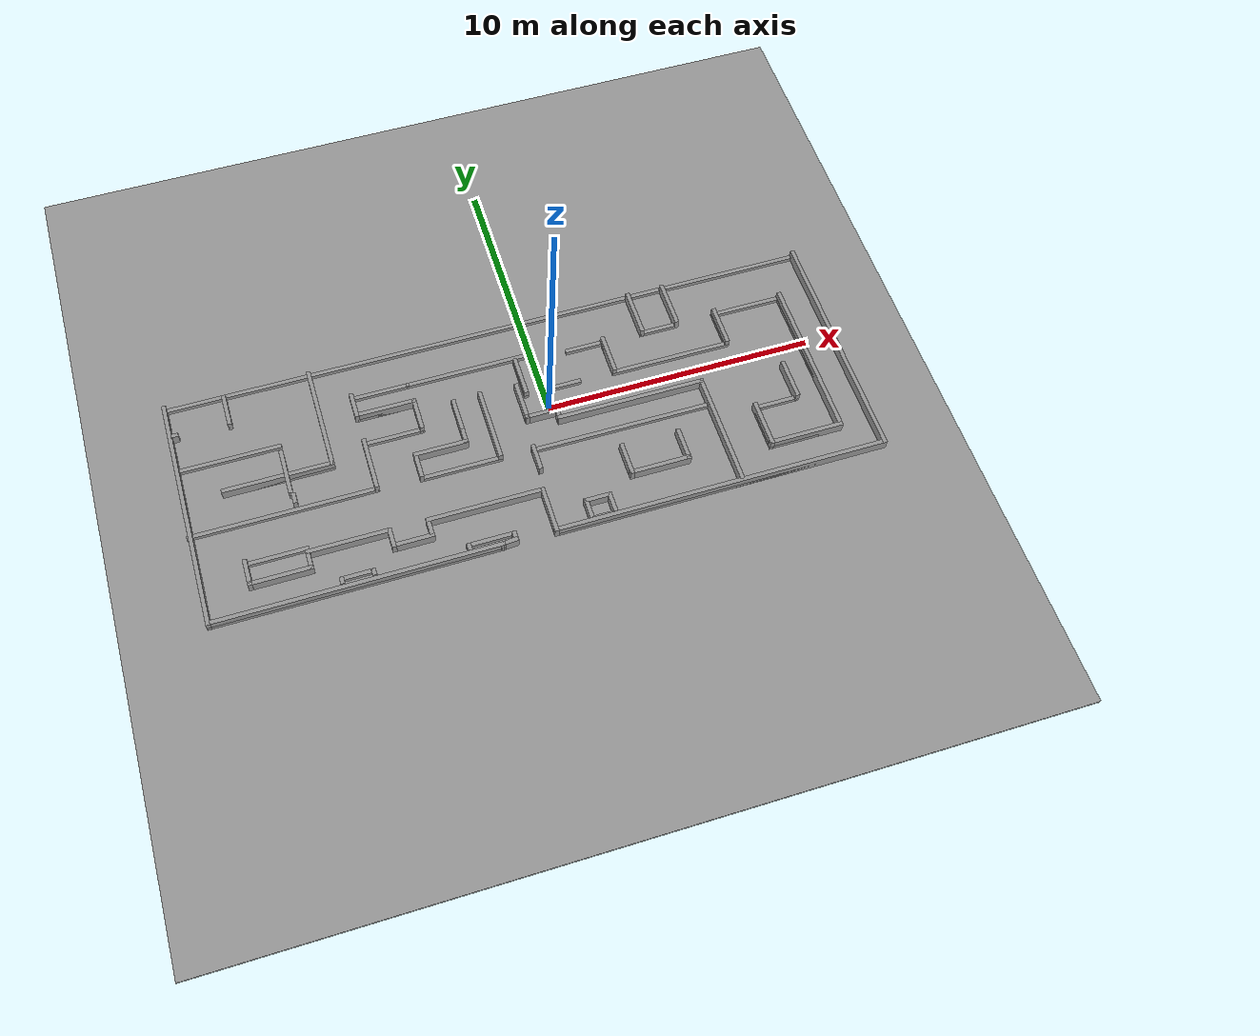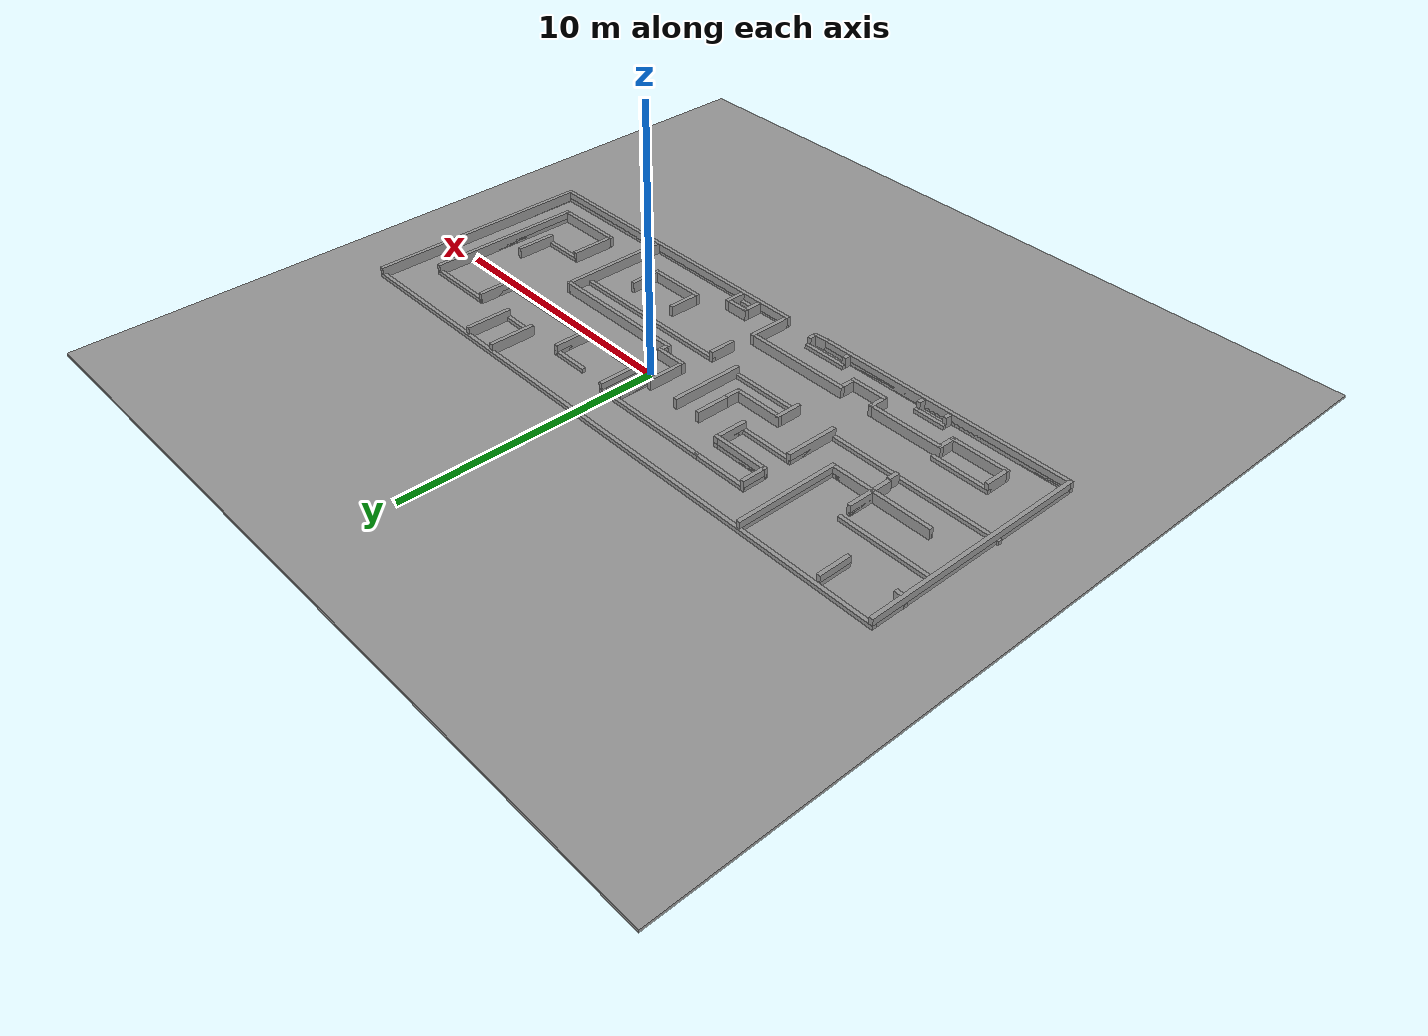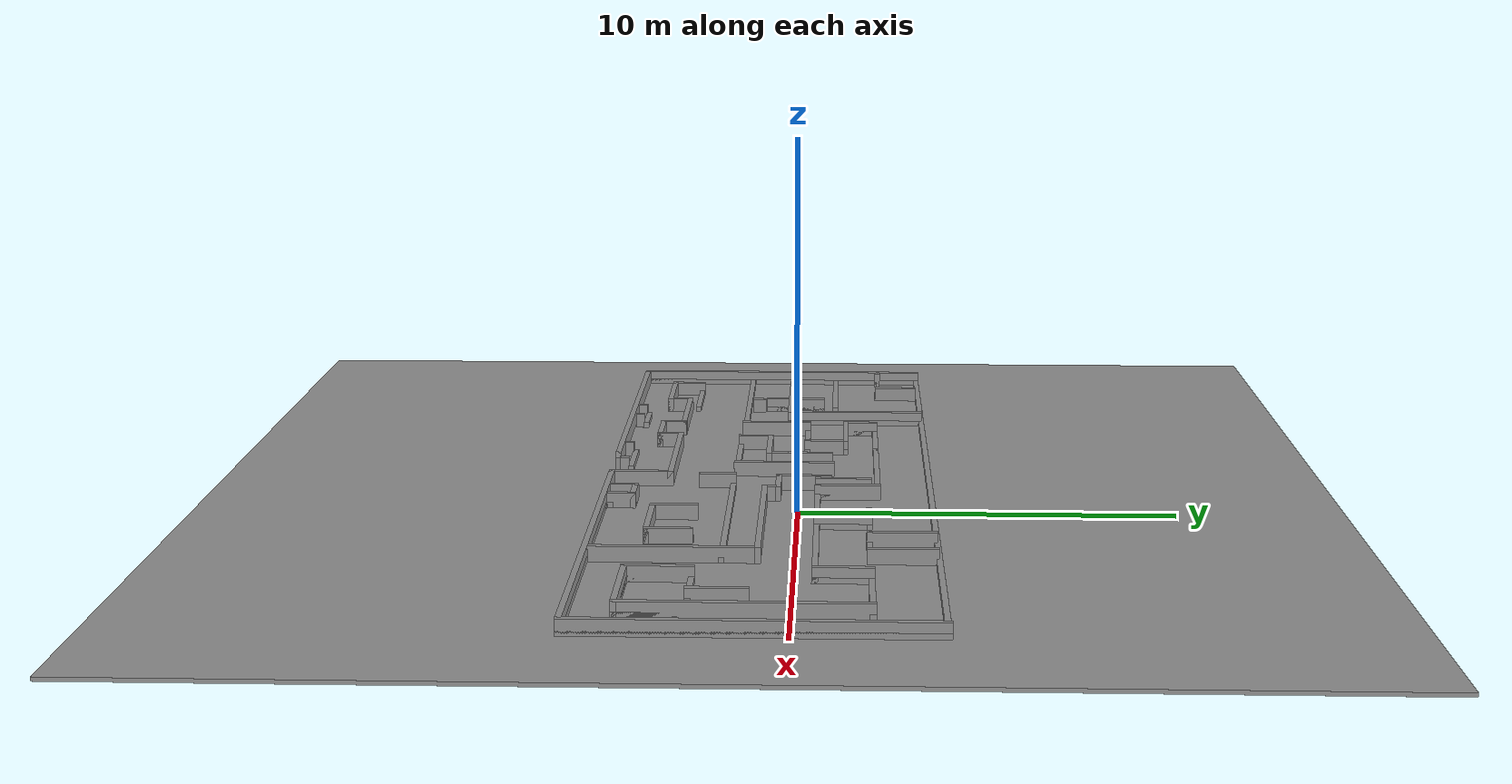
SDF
<sdf version="1.6">
 <world name="default">
  <light name="sun" type="directional">
   <pose>0 0 10 0 -0 0</pose>
   <diffuse>0.8 0.8 0.8 1</diffuse>
   <specular>0.1 0.1 0.1 1</specular>
   <attenuation>
    <range>1000</range>
    <constant>0.9</constant>
    <linear>0.01</linear>
    <quadratic>0.001</quadratic>
   </attenuation>
   <direction>-0.25 0.5 -1</direction>
  </light>
  <gravity>0 0 -9.8</gravity>
  <magnetic_field>6e-06 2.3e-05 -4.2e-05</magnetic_field>
  <atmosphere type="adiabatic"/>
  <physics name="default_physics" default="0" type="ode">
   <max_step_size>0.01</max_step_size>
   <real_time_factor>1</real_time_factor>
   <real_time_update_rate>1000</real_time_update_rate>
  </physics>
  <scene><ambient>0.4 0.4 0.4 1</ambient><background>0.7 0.7 0.7 1</background><shadows>1</shadows></scene>
  <spherical_coordinates>
   <surface_model>EARTH_WGS84</surface_model>
   <latitude_deg>0</latitude_deg>
   <longitude_deg>0</longitude_deg>
   <elevation>0</elevation>
   <heading_deg>0</heading_deg>
  </spherical_coordinates>
  <model name="labrytinthe4">
   <pose>-1.30922 -0.769444 0.25 0 -0 0</pose>
   <link name="Floor_0">
    <collision name="Floor_0_Collision">
     <geometry><box><size>30 30 0.1</size></box></geometry>
     <pose>0 0 0.05 0 -0 0</pose>
    </collision>
    <visual name="Floor_0_Visual">
     <pose>0 0 0.05 0 -0 0</pose>
     <geometry><box><size>30 30 0.1</size></box></geometry>
     <material>
      <script><uri>file://media/materials/scripts/gazebo.material</uri><name>Gazebo/Grey</name></script>
      <ambient>1 1 1 1</ambient>
     </material>
    </visual>
   </link>
   <link name="Wall_0">
    <collision name="Wall_0_Collision"><geometry><box><size>10.25 0.15 0.5</size></box></geometry></collision>
    <visual name="Wall_0_Visual">
     <geometry><box><size>10.25 0.15 0.5</size></box></geometry>
     <material>
      <script><uri>file://media/materials/scripts/gazebo.material</uri><name>Gazebo/Grey</name></script>
      <ambient>1 1 1 1</ambient>
     </material>
    </visual>
    <pose>-6.96553 -4.29701 0 0 -0 3.14159</pose>
   </link>
   <link name="Wall_1">
    <collision name="Wall_1_Collision"><geometry><box><size>8.75 0.15 0.5</size></box></geometry></collision>
    <visual name="Wall_1_Visual">
     <geometry><box><size>8.75 0.15 0.5</size></box></geometry>
     <material>
      <script><uri>file://media/materials/scripts/gazebo.material</uri><name>Gazebo/Grey</name></script>
      <ambient>1 1 1 1</ambient>
     </material>
    </visual>
    <pose>-12.0155 0.002988 0 0 -0 1.5708</pose>
   </link>
   <link name="Wall_100">
    <collision name="Wall_100_Collision"><geometry><box><size>0.25 0.15 0.5</size></box></geometry></collision>
    <visual name="Wall_100_Visual">
     <geometry><box><size>0.25 0.15 0.5</size></box></geometry>
     <material>
      <script><uri>file://media/materials/scripts/gazebo.material</uri><name>Gazebo/Grey</name></script>
      <ambient>1 1 1 1</ambient>
     </material>
    </visual>
    <pose>-1.43337 -4.08178 0.25 0 0 -1.5708</pose>
   </link>
   <link name="Wall_101">
    <collision name="Wall_101_Collision">
     <geometry><box><size>0.633833 0.15 0.5</size></box></geometry>
    </collision>
    <visual name="Wall_101_Visual">
     <geometry><box><size>0.633833 0.15 0.5</size></box></geometry>
     <material>
      <script><uri>file://media/materials/scripts/gazebo.material</uri><name>Gazebo/Grey</name></script>
      <ambient>1 1 1 1</ambient>
     </material>
    </visual>
    <pose>-1.67445 -4.2769 0.25 0 0 -3.05835</pose>
   </link>
   <link name="Wall_103">
    <collision name="Wall_103_Collision"><geometry><box><size>1.5 0.15 0.5</size></box></geometry></collision>
    <visual name="Wall_103_Visual">
     <geometry><box><size>1.5 0.15 0.5</size></box></geometry>
     <material>
      <script><uri>file://media/materials/scripts/gazebo.material</uri><name>Gazebo/Grey</name></script>
      <ambient>1 1 1 1</ambient>
     </material>
    </visual>
    <pose>9.87552 -0.922819 0.25 0 -0 1.5708</pose>
   </link>
   <link name="Wall_105">
    <collision name="Wall_105_Collision"><geometry><box><size>4.25 0.15 0.5</size></box></geometry></collision>
    <visual name="Wall_105_Visual">
     <geometry><box><size>4.25 0.15 0.5</size></box></geometry>
     <material>
      <script><uri>file://media/materials/scripts/gazebo.material</uri><name>Gazebo/Grey</name></script>
      <ambient>1 1 1 1</ambient>
     </material>
    </visual>
    <pose>6.76194 -2.14644 0.25 0 -0 1.5708</pose>
   </link>
   <link name="Wall_106">
    <collision name="Wall_106_Collision"><geometry><box><size>5.5 0.15 0.5</size></box></geometry></collision>
    <visual name="Wall_106_Visual">
     <geometry><box><size>5.5 0.15 0.5</size></box></geometry>
     <material>
      <script><uri>file://media/materials/scripts/gazebo.material</uri><name>Gazebo/Grey</name></script>
      <ambient>1 1 1 1</ambient>
     </material>
    </visual>
    <pose>4.08694 -0.096444 0.25 0 -0 3.14159</pose>
   </link>
   <link name="Wall_107">
    <collision name="Wall_107_Collision"><geometry><box><size>0.25 0.15 0.5</size></box></geometry></collision>
    <visual name="Wall_107_Visual">
     <geometry><box><size>0.25 0.15 0.5</size></box></geometry>
     <material>
      <script><uri>file://media/materials/scripts/gazebo.material</uri><name>Gazebo/Grey</name></script>
      <ambient>1 1 1 1</ambient>
     </material>
    </visual>
    <pose>1.41194 0.078556 0.25 0 -0 1.5708</pose>
   </link>
   <link name="Wall_108">
    <collision name="Wall_108_Collision"><geometry><box><size>1.25 0.15 0.5</size></box></geometry></collision>
    <visual name="Wall_108_Visual">
     <geometry><box><size>1.25 0.15 0.5</size></box></geometry>
     <material>
      <script><uri>file://media/materials/scripts/gazebo.material</uri><name>Gazebo/Grey</name></script>
      <ambient>1 1 1 1</ambient>
     </material>
    </visual>
    <pose>0.861942 0.253556 0.25 0 -0 3.14159</pose>
   </link>
   <link name="Wall_109">
    <collision name="Wall_109_Collision"><geometry><box><size>1.5 0.15 0.5</size></box></geometry></collision>
    <visual name="Wall_109_Visual">
     <geometry><box><size>1.5 0.15 0.5</size></box></geometry>
     <material>
      <script><uri>file://media/materials/scripts/gazebo.material</uri><name>Gazebo/Grey</name></script>
      <ambient>1 1 1 1</ambient>
     </material>
    </visual>
    <pose>0.311942 0.928556 0.25 0 -0 1.5708</pose>
   </link>
   <link name="Wall_111">
    <collision name="Wall_111_Collision"><geometry><box><size>1.25 0.15 0.5</size></box></geometry></collision>
    <visual name="Wall_111_Visual">
     <geometry><box><size>1.25 0.15 0.5</size></box></geometry>
     <material>
      <script><uri>file://media/materials/scripts/gazebo.material</uri><name>Gazebo/Grey</name></script>
      <ambient>1 1 1 1</ambient>
     </material>
    </visual>
    <pose>-2.03806 1.05356 0.25 0 0 -1.5708</pose>
   </link>
   <link name="Wall_112">
    <collision name="Wall_112_Collision"><geometry><box><size>0.75 0.15 0.5</size></box></geometry></collision>
    <visual name="Wall_112_Visual">
     <geometry><box><size>0.75 0.15 0.5</size></box></geometry>
     <material>
      <script><uri>file://media/materials/scripts/gazebo.material</uri><name>Gazebo/Grey</name></script>
      <ambient>1 1 1 1</ambient>
     </material>
    </visual>
    <pose>-2.03806 0.203556 0.25 0 0 -1.5708</pose>
   </link>
   <link name="Wall_113">
    <collision name="Wall_113_Collision"><geometry><box><size>2 0.15 0.5</size></box></geometry></collision>
    <visual name="Wall_113_Visual">
     <geometry><box><size>2 0.15 0.5</size></box></geometry>
     <material>
      <script><uri>file://media/materials/scripts/gazebo.material</uri><name>Gazebo/Grey</name></script>
      <ambient>1 1 1 1</ambient>
     </material>
    </visual>
    <pose>-2.96306 -0.096444 0.25 0 -0 3.14159</pose>
   </link>
   <link name="Wall_114">
    <collision name="Wall_114_Collision"><geometry><box><size>1 0.15 0.5</size></box></geometry></collision>
    <visual name="Wall_114_Visual">
     <geometry><box><size>1 0.15 0.5</size></box></geometry>
     <material>
      <script><uri>file://media/materials/scripts/gazebo.material</uri><name>Gazebo/Grey</name></script>
      <ambient>1 1 1 1</ambient>
     </material>
    </visual>
    <pose>-3.88806 -0.521444 0.25 0 0 -1.5708</pose>
   </link>
   <link name="Wall_115">
    <collision name="Wall_115_Collision"><geometry><box><size>3 0.15 0.5</size></box></geometry></collision>
    <visual name="Wall_115_Visual">
     <geometry><box><size>3 0.15 0.5</size></box></geometry>
     <material>
      <script><uri>file://media/materials/scripts/gazebo.material</uri><name>Gazebo/Grey</name></script>
      <ambient>1 1 1 1</ambient>
     </material>
    </visual>
    <pose>-2.46306 -0.946445 0 0 -0 0</pose>
   </link>
   <link name="Wall_116">
    <collision name="Wall_116_Collision"><geometry><box><size>2.75 0.15 0.5</size></box></geometry></collision>
    <visual name="Wall_116_Visual">
     <geometry><box><size>2.75 0.15 0.5</size></box></geometry>
     <material>
      <script><uri>file://media/materials/scripts/gazebo.material</uri><name>Gazebo/Grey</name></script>
      <ambient>1 1 1 1</ambient>
     </material>
    </visual>
    <pose>-1.03806 0.353556 0.25 0 -0 1.5708</pose>
   </link>
   <link name="Wall_118">
    <collision name="Wall_118_Collision"><geometry><box><size>1 0.15 0.5</size></box></geometry></collision>
    <visual name="Wall_118_Visual">
     <geometry><box><size>1 0.15 0.5</size></box></geometry>
     <material>
      <script><uri>file://media/materials/scripts/gazebo.material</uri><name>Gazebo/Grey</name></script>
      <ambient>1 1 1 1</ambient>
     </material>
    </visual>
    <pose>0.164691 -1.40327 0.25 0 0 -1.5708</pose>
   </link>
   <link name="Wall_12">
    <collision name="Wall_12_Collision"><geometry><box><size>1.25 0.15 0.5</size></box></geometry></collision>
    <visual name="Wall_12_Visual">
     <geometry><box><size>1.25 0.15 0.5</size></box></geometry>
     <material>
      <script><uri>file://media/materials/scripts/gazebo.material</uri><name>Gazebo/Grey</name></script>
      <ambient>1 1 1 1</ambient>
     </material>
    </visual>
    <pose>-9.88687 3.59444 0 0 -0 1.5708</pose>
   </link>
   <link name="Wall_120">
    <collision name="Wall_120_Collision"><geometry><box><size>1.25 0.15 0.5</size></box></geometry></collision>
    <visual name="Wall_120_Visual">
     <geometry><box><size>1.25 0.15 0.5</size></box></geometry>
     <material>
      <script><uri>file://media/materials/scripts/gazebo.material</uri><name>Gazebo/Grey</name></script>
      <ambient>1 1 1 1</ambient>
     </material>
    </visual>
    <pose>5.26469 -2.37827 0.25 0 0 -1.5708</pose>
   </link>
   <link name="Wall_121">
    <collision name="Wall_121_Collision"><geometry><box><size>2.25 0.15 0.5</size></box></geometry></collision>
    <visual name="Wall_121_Visual">
     <geometry><box><size>2.25 0.15 0.5</size></box></geometry>
     <material>
      <script><uri>file://media/materials/scripts/gazebo.material</uri><name>Gazebo/Grey</name></script>
      <ambient>1 1 1 1</ambient>
     </material>
    </visual>
    <pose>4.21469 -2.92827 0.25 0 -0 3.14159</pose>
   </link>
   <link name="Wall_122">
    <collision name="Wall_122_Collision"><geometry><box><size>1.25 0.15 0.5</size></box></geometry></collision>
    <visual name="Wall_122_Visual">
     <geometry><box><size>1.25 0.15 0.5</size></box></geometry>
     <material>
      <script><uri>file://media/materials/scripts/gazebo.material</uri><name>Gazebo/Grey</name></script>
      <ambient>1 1 1 1</ambient>
     </material>
    </visual>
    <pose>3.16469 -2.37827 0.25 0 -0 1.5708</pose>
   </link>
   <link name="Wall_124">
    <collision name="Wall_124_Collision"><geometry><box><size>6.75 0.15 0.5</size></box></geometry></collision>
    <visual name="Wall_124_Visual">
     <geometry><box><size>6.75 0.15 0.5</size></box></geometry>
     <material>
      <script><uri>file://media/materials/scripts/gazebo.material</uri><name>Gazebo/Grey</name></script>
      <ambient>1 1 1 1</ambient>
     </material>
    </visual>
    <pose>3.46469 -0.978273 0 0 -0 0</pose>
   </link>
   <link name="Wall_126">
    <collision name="Wall_126_Collision"><geometry><box><size>0.75 0.15 0.5</size></box></geometry></collision>
    <visual name="Wall_126_Visual">
     <geometry><box><size>0.75 0.15 0.5</size></box></geometry>
     <material>
      <script><uri>file://media/materials/scripts/gazebo.material</uri><name>Gazebo/Grey</name></script>
      <ambient>1 1 1 1</ambient>
     </material>
    </visual>
    <pose>1.29105 -3.8327 0.25 0 0 -1.5708</pose>
   </link>
   <link name="Wall_127">
    <collision name="Wall_127_Collision"><geometry><box><size>1 0.15 0.5</size></box></geometry></collision>
    <visual name="Wall_127_Visual">
     <geometry><box><size>1 0.15 0.5</size></box></geometry>
     <material>
      <script><uri>file://media/materials/scripts/gazebo.material</uri><name>Gazebo/Grey</name></script>
      <ambient>1 1 1 1</ambient>
     </material>
    </visual>
    <pose>1.71605 -4.1327 0 0 -0 0</pose>
   </link>
   <link name="Wall_128">
    <collision name="Wall_128_Collision"><geometry><box><size>0.75 0.15 0.5</size></box></geometry></collision>
    <visual name="Wall_128_Visual">
     <geometry><box><size>0.75 0.15 0.5</size></box></geometry>
     <material>
      <script><uri>file://media/materials/scripts/gazebo.material</uri><name>Gazebo/Grey</name></script>
      <ambient>1 1 1 1</ambient>
     </material>
    </visual>
    <pose>2.14105 -3.8327 0.25 0 -0 1.5708</pose>
   </link>
   <link name="Wall_129">
    <collision name="Wall_129_Collision"><geometry><box><size>1 0.15 0.5</size></box></geometry></collision>
    <visual name="Wall_129_Visual">
     <geometry><box><size>1 0.15 0.5</size></box></geometry>
     <material>
      <script><uri>file://media/materials/scripts/gazebo.material</uri><name>Gazebo/Grey</name></script>
      <ambient>1 1 1 1</ambient>
     </material>
    </visual>
    <pose>1.71605 -3.5327 0.25 0 -0 3.14159</pose>
   </link>
   <link name="Wall_14">
    <collision name="Wall_14_Collision"><geometry><box><size>3.75 0.15 0.5</size></box></geometry></collision>
    <visual name="Wall_14_Visual">
     <geometry><box><size>3.75 0.15 0.5</size></box></geometry>
     <material>
      <script><uri>file://media/materials/scripts/gazebo.material</uri><name>Gazebo/Grey</name></script>
      <ambient>1 1 1 1</ambient>
     </material>
    </visual>
    <pose>-10.1839 1.73706 0 0 -0 0</pose>
   </link>
   <link name="Wall_15">
    <collision name="Wall_15_Collision"><geometry><box><size>1.75 0.15 0.5</size></box></geometry></collision>
    <visual name="Wall_15_Visual">
     <geometry><box><size>1.75 0.15 0.5</size></box></geometry>
     <material>
      <script><uri>file://media/materials/scripts/gazebo.material</uri><name>Gazebo/Grey</name></script>
      <ambient>1 1 1 1</ambient>
     </material>
    </visual>
    <pose>-8.38391 0.53706 0 0 -0 1.5708</pose>
   </link>
   <link name="Wall_17">
    <collision name="Wall_17_Collision"><geometry><box><size>4 0.15 0.5</size></box></geometry></collision>
    <visual name="Wall_17_Visual">
     <geometry><box><size>4 0.15 0.5</size></box></geometry>
     <material>
      <script><uri>file://media/materials/scripts/gazebo.material</uri><name>Gazebo/Grey</name></script>
      <ambient>1 1 1 1</ambient>
     </material>
    </visual>
    <pose>-6.75438 2.32626 0 0 0 -1.5708</pose>
   </link>
   <link name="Wall_18">
    <collision name="Wall_18_Collision"><geometry><box><size>4 0.15 0.5</size></box></geometry></collision>
    <visual name="Wall_18_Visual">
     <geometry><box><size>4 0.15 0.5</size></box></geometry>
     <material>
      <script><uri>file://media/materials/scripts/gazebo.material</uri><name>Gazebo/Grey</name></script>
      <ambient>1 1 1 1</ambient>
     </material>
    </visual>
    <pose>-8.67938 0.401256 0 0 -0 3.14159</pose>
   </link>
   <link name="Wall_2">
    <collision name="Wall_2_Collision"><geometry><box><size>24.25 0.15 0.5</size></box></geometry></collision>
    <visual name="Wall_2_Visual">
     <geometry><box><size>24.25 0.15 0.5</size></box></geometry>
     <material>
      <script><uri>file://media/materials/scripts/gazebo.material</uri><name>Gazebo/Grey</name></script>
      <ambient>1 1 1 1</ambient>
     </material>
    </visual>
    <pose>0.034475 4.30299 0 0 -0 0</pose>
   </link>
   <link name="Wall_20">
    <collision name="Wall_20_Collision"><geometry><box><size>6.75 0.15 0.5</size></box></geometry></collision>
    <visual name="Wall_20_Visual">
     <geometry><box><size>6.75 0.15 0.5</size></box></geometry>
     <material>
      <script><uri>file://media/materials/scripts/gazebo.material</uri><name>Gazebo/Grey</name></script>
      <ambient>1 1 1 1</ambient>
     </material>
    </visual>
    <pose>-8.78447 -0.897819 0 0 -0 0</pose>
   </link>
   <link name="Wall_21">
    <collision name="Wall_21_Collision"><geometry><box><size>2 0.15 0.5</size></box></geometry></collision>
    <visual name="Wall_21_Visual">
     <geometry><box><size>2 0.15 0.5</size></box></geometry>
     <material>
      <script><uri>file://media/materials/scripts/gazebo.material</uri><name>Gazebo/Grey</name></script>
      <ambient>1 1 1 1</ambient>
     </material>
    </visual>
    <pose>-5.48447 0.027181 0 0 -0 1.5708</pose>
   </link>
   <link name="Wall_22">
    <collision name="Wall_22_Collision"><geometry><box><size>2.25 0.15 0.5</size></box></geometry></collision>
    <visual name="Wall_22_Visual">
     <geometry><box><size>2.25 0.15 0.5</size></box></geometry>
     <material>
      <script><uri>file://media/materials/scripts/gazebo.material</uri><name>Gazebo/Grey</name></script>
      <ambient>1 1 1 1</ambient>
     </material>
    </visual>
    <pose>-4.43447 0.952181 0 0 -0 0</pose>
   </link>
   <link name="Wall_23">
    <collision name="Wall_23_Collision"><geometry><box><size>1.25 0.15 0.5</size></box></geometry></collision>
    <visual name="Wall_23_Visual">
     <geometry><box><size>1.25 0.15 0.5</size></box></geometry>
     <material>
      <script><uri>file://media/materials/scripts/gazebo.material</uri><name>Gazebo/Grey</name></script>
      <ambient>1 1 1 1</ambient>
     </material>
    </visual>
    <pose>-3.38448 1.50218 0 0 -0 1.5708</pose>
   </link>
   <link name="Wall_24">
    <collision name="Wall_24_Collision"><geometry><box><size>2.25 0.15 0.5</size></box></geometry></collision>
    <visual name="Wall_24_Visual">
     <geometry><box><size>2.25 0.15 0.5</size></box></geometry>
     <material>
      <script><uri>file://media/materials/scripts/gazebo.material</uri><name>Gazebo/Grey</name></script>
      <ambient>1 1 1 1</ambient>
     </material>
    </visual>
    <pose>-4.43447 2.05218 0 0 -0 3.14159</pose>
   </link>
   <link name="Wall_25">
    <collision name="Wall_25_Collision"><geometry><box><size>1 0.15 0.5</size></box></geometry></collision>
    <visual name="Wall_25_Visual">
     <geometry><box><size>1 0.15 0.5</size></box></geometry>
     <material>
      <script><uri>file://media/materials/scripts/gazebo.material</uri><name>Gazebo/Grey</name></script>
      <ambient>1 1 1 1</ambient>
     </material>
    </visual>
    <pose>-5.48447 2.47718 0 0 -0 1.5708</pose>
   </link>
   <link name="Wall_26">
    <collision name="Wall_26_Collision"><geometry><box><size>2.25 0.15 0.5</size></box></geometry></collision>
    <visual name="Wall_26_Visual">
     <geometry><box><size>2.25 0.15 0.5</size></box></geometry>
     <material>
      <script><uri>file://media/materials/scripts/gazebo.material</uri><name>Gazebo/Grey</name></script>
      <ambient>1 1 1 1</ambient>
     </material>
    </visual>
    <pose>-4.43447 2.90218 0 0 -0 0</pose>
   </link>
   <link name="Wall_27">
    <collision name="Wall_27_Collision"><geometry><box><size>0.16 0.15 0.5</size></box></geometry></collision>
    <visual name="Wall_27_Visual">
     <geometry><box><size>0.16 0.15 0.5</size></box></geometry>
     <material>
      <script><uri>file://media/materials/scripts/gazebo.material</uri><name>Gazebo/Grey</name></script>
      <ambient>1 1 1 1</ambient>
     </material>
    </visual>
    <pose>-3.37947 2.90218 0 0 -0 0</pose>
   </link>
   <link name="Wall_28">
    <collision name="Wall_28_Collision"><geometry><box><size>4.75 0.15 0.5</size></box></geometry></collision>
    <visual name="Wall_28_Visual">
     <geometry><box><size>4.75 0.15 0.5</size></box></geometry>
     <material>
      <script><uri>file://media/materials/scripts/gazebo.material</uri><name>Gazebo/Grey</name></script>
      <ambient>1 1 1 1</ambient>
     </material>
    </visual>
    <pose>-1.07448 2.90218 0 0 -0 0</pose>
   </link>
   <link name="Wall_29">
    <collision name="Wall_29_Collision"><geometry><box><size>1.75 0.15 0.5</size></box></geometry></collision>
    <visual name="Wall_29_Visual">
     <geometry><box><size>1.75 0.15 0.5</size></box></geometry>
     <material>
      <script><uri>file://media/materials/scripts/gazebo.material</uri><name>Gazebo/Grey</name></script>
      <ambient>1 1 1 1</ambient>
     </material>
    </visual>
    <pose>1.22552 2.10218 0 0 0 -1.5708</pose>
   </link>
   <link name="Wall_3">
    <collision name="Wall_3_Collision"><geometry><box><size>8.75 0.15 0.5</size></box></geometry></collision>
    <visual name="Wall_3_Visual">
     <geometry><box><size>8.75 0.15 0.5</size></box></geometry>
     <material>
      <script><uri>file://media/materials/scripts/gazebo.material</uri><name>Gazebo/Grey</name></script>
      <ambient>1 1 1 1</ambient>
     </material>
    </visual>
    <pose>12.0845 0.002988 0 0 0 -1.5708</pose>
   </link>
   <link name="Wall_30">
    <collision name="Wall_30_Collision"><geometry><box><size>1.5 0.15 0.5</size></box></geometry></collision>
    <visual name="Wall_30_Visual">
     <geometry><box><size>1.5 0.15 0.5</size></box></geometry>
     <material>
      <script><uri>file://media/materials/scripts/gazebo.material</uri><name>Gazebo/Grey</name></script>
      <ambient>1 1 1 1</ambient>
     </material>
    </visual>
    <pose>1.90053 1.30218 0 0 -0 0</pose>
   </link>
   <link name="Wall_31">
    <collision name="Wall_31_Collision"><geometry><box><size>1.5 0.15 0.5</size></box></geometry></collision>
    <visual name="Wall_31_Visual">
     <geometry><box><size>1.5 0.15 0.5</size></box></geometry>
     <material>
      <script><uri>file://media/materials/scripts/gazebo.material</uri><name>Gazebo/Grey</name></script>
      <ambient>1 1 1 1</ambient>
     </material>
    </visual>
    <pose>0.57552 1.97718 0 0 -0 1.5708</pose>
   </link>
   <link name="Wall_32">
    <collision name="Wall_32_Collision"><geometry><box><size>1.5 0.15 0.5</size></box></geometry></collision>
    <visual name="Wall_32_Visual">
     <geometry><box><size>1.5 0.15 0.5</size></box></geometry>
     <material>
      <script><uri>file://media/materials/scripts/gazebo.material</uri><name>Gazebo/Grey</name></script>
      <ambient>1 1 1 1</ambient>
     </material>
    </visual>
    <pose>3.25053 2.65218 0 0 -0 0</pose>
   </link>
   <link name="Wall_33">
    <collision name="Wall_33_Collision"><geometry><box><size>1.5 0.15 0.5</size></box></geometry></collision>
    <visual name="Wall_33_Visual">
     <geometry><box><size>1.5 0.15 0.5</size></box></geometry>
     <material>
      <script><uri>file://media/materials/scripts/gazebo.material</uri><name>Gazebo/Grey</name></script>
      <ambient>1 1 1 1</ambient>
     </material>
    </visual>
    <pose>3.92552 1.97718 0 0 0 -1.5708</pose>
   </link>
   <link name="Wall_34">
    <collision name="Wall_34_Collision"><geometry><box><size>4.5 0.15 0.5</size></box></geometry></collision>
    <visual name="Wall_34_Visual">
     <geometry><box><size>4.5 0.15 0.5</size></box></geometry>
     <material>
      <script><uri>file://media/materials/scripts/gazebo.material</uri><name>Gazebo/Grey</name></script>
      <ambient>1 1 1 1</ambient>
     </material>
    </visual>
    <pose>6.10053 1.30218 0 0 -0 0</pose>
   </link>
   <link name="Wall_35">
    <collision name="Wall_35_Collision"><geometry><box><size>1.5 0.15 0.5</size></box></geometry></collision>
    <visual name="Wall_35_Visual">
     <geometry><box><size>1.5 0.15 0.5</size></box></geometry>
     <material>
      <script><uri>file://media/materials/scripts/gazebo.material</uri><name>Gazebo/Grey</name></script>
      <ambient>1 1 1 1</ambient>
     </material>
    </visual>
    <pose>8.27553 1.97718 0 0 -0 1.5708</pose>
   </link>
   <link name="Wall_36">
    <collision name="Wall_36_Collision"><geometry><box><size>2.75 0.15 0.5</size></box></geometry></collision>
    <visual name="Wall_36_Visual">
     <geometry><box><size>2.75 0.15 0.5</size></box></geometry>
     <material>
      <script><uri>file://media/materials/scripts/gazebo.material</uri><name>Gazebo/Grey</name></script>
      <ambient>1 1 1 1</ambient>
     </material>
    </visual>
    <pose>9.57553 2.65218 0 0 -0 0</pose>
   </link>
   <link name="Wall_37">
    <collision name="Wall_37_Collision"><geometry><box><size>6 0.15 0.5</size></box></geometry></collision>
    <visual name="Wall_37_Visual">
     <geometry><box><size>6 0.15 0.5</size></box></geometry>
     <material>
      <script><uri>file://media/materials/scripts/gazebo.material</uri><name>Gazebo/Grey</name></script>
      <ambient>1 1 1 1</ambient>
     </material>
    </visual>
    <pose>10.8755 -0.272819 0 0 0 -1.5708</pose>
   </link>
   <link name="Wall_38">
    <collision name="Wall_38_Collision"><geometry><box><size>2.75 0.15 0.5</size></box></geometry></collision>
    <visual name="Wall_38_Visual">
     <geometry><box><size>2.75 0.15 0.5</size></box></geometry>
     <material>
      <script><uri>file://media/materials/scripts/gazebo.material</uri><name>Gazebo/Grey</name></script>
      <ambient>1 1 1 1</ambient>
     </material>
    </visual>
    <pose>9.57553 -3.19782 0 0 -0 3.14159</pose>
   </link>
   <link name="Wall_39">
    <collision name="Wall_39_Collision"><geometry><box><size>1.75 0.15 0.5</size></box></geometry></collision>
    <visual name="Wall_39_Visual">
     <geometry><box><size>1.75 0.15 0.5</size></box></geometry>
     <material>
      <script><uri>file://media/materials/scripts/gazebo.material</uri><name>Gazebo/Grey</name></script>
      <ambient>1 1 1 1</ambient>
     </material>
    </visual>
    <pose>8.27553 -2.39782 0 0 -0 1.5708</pose>
   </link>
   <link name="Wall_4">
    <collision name="Wall_4_Collision"><geometry><box><size>12.25 0.15 0.5</size></box></geometry></collision>
    <visual name="Wall_4_Visual">
     <geometry><box><size>12.25 0.15 0.5</size></box></geometry>
     <material>
      <script><uri>file://media/materials/scripts/gazebo.material</uri><name>Gazebo/Grey</name></script>
      <ambient>1 1 1 1</ambient>
     </material>
    </visual>
    <pose>6.03447 -4.29701 0 0 -0 3.14159</pose>
   </link>
   <link name="Wall_40">
    <collision name="Wall_40_Collision"><geometry><box><size>1.75 0.15 0.5</size></box></geometry></collision>
    <visual name="Wall_40_Visual">
     <geometry><box><size>1.75 0.15 0.5</size></box></geometry>
     <material>
      <script><uri>file://media/materials/scripts/gazebo.material</uri><name>Gazebo/Grey</name></script>
      <ambient>1 1 1 1</ambient>
     </material>
    </visual>
    <pose>9.07553 -1.59782 0 0 -0 0</pose>
   </link>
   <link name="Wall_44">
    <collision name="Wall_44_Collision"><geometry><box><size>10.25 0.15 0.5</size></box></geometry></collision>
    <visual name="Wall_44_Visual">
     <geometry><box><size>10.25 0.15 0.5</size></box></geometry>
     <material>
      <script><uri>file://media/materials/scripts/gazebo.material</uri><name>Gazebo/Grey</name></script>
      <ambient>1 1 1 1</ambient>
     </material>
    </visual>
    <pose>-6.96553 -4.29701 0.25 0 -0 3.14159</pose>
   </link>
   <link name="Wall_45">
    <collision name="Wall_45_Collision"><geometry><box><size>8.75 0.15 0.5</size></box></geometry></collision>
    <visual name="Wall_45_Visual">
     <geometry><box><size>8.75 0.15 0.5</size></box></geometry>
     <material>
      <script><uri>file://media/materials/scripts/gazebo.material</uri><name>Gazebo/Grey</name></script>
      <ambient>1 1 1 1</ambient>
     </material>
    </visual>
    <pose>-12.0155 0.002988 0.25 0 -0 1.5708</pose>
   </link>
   <link name="Wall_46">
    <collision name="Wall_46_Collision"><geometry><box><size>24.25 0.15 0.5</size></box></geometry></collision>
    <visual name="Wall_46_Visual">
     <geometry><box><size>24.25 0.15 0.5</size></box></geometry>
     <material>
      <script><uri>file://media/materials/scripts/gazebo.material</uri><name>Gazebo/Grey</name></script>
      <ambient>1 1 1 1</ambient>
     </material>
    </visual>
    <pose>0.034475 4.30299 0 0 -0 0</pose>
   </link>
   <link name="Wall_47">
    <collision name="Wall_47_Collision"><geometry><box><size>8.75 0.15 0.5</size></box></geometry></collision>
    <visual name="Wall_47_Visual">
     <geometry><box><size>8.75 0.15 0.5</size></box></geometry>
     <material>
      <script><uri>file://media/materials/scripts/gazebo.material</uri><name>Gazebo/Grey</name></script>
      <ambient>1 1 1 1</ambient>
     </material>
    </visual>
    <pose>12.0845 0.002988 0.25 0 0 -1.5708</pose>
   </link>
   <link name="Wall_48">
    <collision name="Wall_48_Collision"><geometry><box><size>12.25 0.15 0.5</size></box></geometry></collision>
    <visual name="Wall_48_Visual">
     <geometry><box><size>12.25 0.15 0.5</size></box></geometry>
     <material>
      <script><uri>file://media/materials/scripts/gazebo.material</uri><name>Gazebo/Grey</name></script>
      <ambient>1 1 1 1</ambient>
     </material>
    </visual>
    <pose>6.03447 -4.29701 0.25 0 -0 3.14159</pose>
   </link>
   <link name="Wall_49">
    <collision name="Wall_49_Collision"><geometry><box><size>0.25 0.15 0.5</size></box></geometry></collision>
    <visual name="Wall_49_Visual">
     <geometry><box><size>0.25 0.15 0.5</size></box></geometry>
     <material>
      <script><uri>file://media/materials/scripts/gazebo.material</uri><name>Gazebo/Grey</name></script>
      <ambient>1 1 1 1</ambient>
     </material>
    </visual>
    <pose>-11.8371 3.06455 0.25 0 -0 3.14159</pose>
   </link>
   <link name="Wall_50">
    <collision name="Wall_50_Collision"><geometry><box><size>0.15 0.15 0.5</size></box></geometry></collision>
    <visual name="Wall_50_Visual">
     <geometry><box><size>0.15 0.15 0.5</size></box></geometry>
     <material>
      <script><uri>file://media/materials/scripts/gazebo.material</uri><name>Gazebo/Grey</name></script>
      <ambient>1 1 1 1</ambient>
     </material>
    </visual>
    <pose>-12.0322 3.06455 0 0 -0 0</pose>
   </link>
   <link name="Wall_52">
    <collision name="Wall_52_Collision"><geometry><box><size>1.25 0.15 0.5</size></box></geometry></collision>
    <visual name="Wall_52_Visual">
     <geometry><box><size>1.25 0.15 0.5</size></box></geometry>
     <material>
      <script><uri>file://media/materials/scripts/gazebo.material</uri><name>Gazebo/Grey</name></script>
      <ambient>1 1 1 1</ambient>
     </material>
    </visual>
    <pose>-9.88687 3.59444 0.25 0 -0 1.5708</pose>
   </link>
   <link name="Wall_53">
    <collision name="Wall_53_Collision"><geometry><box><size>3.75 0.15 0.5</size></box></geometry></collision>
    <visual name="Wall_53_Visual">
     <geometry><box><size>3.75 0.15 0.5</size></box></geometry>
     <material>
      <script><uri>file://media/materials/scripts/gazebo.material</uri><name>Gazebo/Grey</name></script>
      <ambient>1 1 1 1</ambient>
     </material>
    </visual>
    <pose>-10.1839 1.73706 0 0 -0 0</pose>
   </link>
   <link name="Wall_54">
    <collision name="Wall_54_Collision"><geometry><box><size>1.75 0.15 0.5</size></box></geometry></collision>
    <visual name="Wall_54_Visual">
     <geometry><box><size>1.75 0.15 0.5</size></box></geometry>
     <material>
      <script><uri>file://media/materials/scripts/gazebo.material</uri><name>Gazebo/Grey</name></script>
      <ambient>1 1 1 1</ambient>
     </material>
    </visual>
    <pose>-8.38391 0.53706 0.25 0 -0 1.5708</pose>
   </link>
   <link name="Wall_55">
    <collision name="Wall_55_Collision"><geometry><box><size>4 0.15 0.5</size></box></geometry></collision>
    <visual name="Wall_55_Visual">
     <geometry><box><size>4 0.15 0.5</size></box></geometry>
     <material>
      <script><uri>file://media/materials/scripts/gazebo.material</uri><name>Gazebo/Grey</name></script>
      <ambient>1 1 1 1</ambient>
     </material>
    </visual>
    <pose>-6.75438 2.32626 0.25 0 0 -1.5708</pose>
   </link>
   <link name="Wall_56">
    <collision name="Wall_56_Collision"><geometry><box><size>4 0.15 0.5</size></box></geometry></collision>
    <visual name="Wall_56_Visual">
     <geometry><box><size>4 0.15 0.5</size></box></geometry>
     <material>
      <script><uri>file://media/materials/scripts/gazebo.material</uri><name>Gazebo/Grey</name></script>
      <ambient>1 1 1 1</ambient>
     </material>
    </visual>
    <pose>-8.67938 0.401256 0.25 0 -0 3.14159</pose>
   </link>
   <link name="Wall_57">
    <collision name="Wall_57_Collision"><geometry><box><size>6.75 0.15 0.5</size></box></geometry></collision>
    <visual name="Wall_57_Visual">
     <geometry><box><size>6.75 0.15 0.5</size></box></geometry>
     <material>
      <script><uri>file://media/materials/scripts/gazebo.material</uri><name>Gazebo/Grey</name></script>
      <ambient>1 1 1 1</ambient>
     </material>
    </visual>
    <pose>-8.78447 -0.897819 0 0 -0 0</pose>
   </link>
   <link name="Wall_58">
    <collision name="Wall_58_Collision"><geometry><box><size>2 0.15 0.5</size></box></geometry></collision>
    <visual name="Wall_58_Visual">
     <geometry><box><size>2 0.15 0.5</size></box></geometry>
     <material>
      <script><uri>file://media/materials/scripts/gazebo.material</uri><name>Gazebo/Grey</name></script>
      <ambient>1 1 1 1</ambient>
     </material>
    </visual>
    <pose>-5.48447 0.027181 0.25 0 -0 1.5708</pose>
   </link>
   <link name="Wall_59">
    <collision name="Wall_59_Collision"><geometry><box><size>2.25 0.15 0.5</size></box></geometry></collision>
    <visual name="Wall_59_Visual">
     <geometry><box><size>2.25 0.15 0.5</size></box></geometry>
     <material>
      <script><uri>file://media/materials/scripts/gazebo.material</uri><name>Gazebo/Grey</name></script>
      <ambient>1 1 1 1</ambient>
     </material>
    </visual>
    <pose>-4.43447 0.952181 0 0 -0 0</pose>
   </link>
   <link name="Wall_6">
    <collision name="Wall_6_Collision"><geometry><box><size>0.25 0.15 0.5</size></box></geometry></collision>
    <visual name="Wall_6_Visual">
     <geometry><box><size>0.25 0.15 0.5</size></box></geometry>
     <material>
      <script><uri>file://media/materials/scripts/gazebo.material</uri><name>Gazebo/Grey</name></script>
      <ambient>1 1 1 1</ambient>
     </material>
    </visual>
    <pose>-11.8371 3.06455 0 0 -0 3.14159</pose>
   </link>
   <link name="Wall_60">
    <collision name="Wall_60_Collision"><geometry><box><size>1.25 0.15 0.5</size></box></geometry></collision>
    <visual name="Wall_60_Visual">
     <geometry><box><size>1.25 0.15 0.5</size></box></geometry>
     <material>
      <script><uri>file://media/materials/scripts/gazebo.material</uri><name>Gazebo/Grey</name></script>
      <ambient>1 1 1 1</ambient>
     </material>
    </visual>
    <pose>-3.38448 1.50218 0.25 0 -0 1.5708</pose>
   </link>
   <link name="Wall_61">
    <collision name="Wall_61_Collision"><geometry><box><size>2.25 0.15 0.5</size></box></geometry></collision>
    <visual name="Wall_61_Visual">
     <geometry><box><size>2.25 0.15 0.5</size></box></geometry>
     <material>
      <script><uri>file://media/materials/scripts/gazebo.material</uri><name>Gazebo/Grey</name></script>
      <ambient>1 1 1 1</ambient>
     </material>
    </visual>
    <pose>-4.43447 2.05218 0.25 0 -0 3.14159</pose>
   </link>
   <link name="Wall_62">
    <collision name="Wall_62_Collision"><geometry><box><size>1 0.15 0.5</size></box></geometry></collision>
    <visual name="Wall_62_Visual">
     <geometry><box><size>1 0.15 0.5</size></box></geometry>
     <material>
      <script><uri>file://media/materials/scripts/gazebo.material</uri><name>Gazebo/Grey</name></script>
      <ambient>1 1 1 1</ambient>
     </material>
    </visual>
    <pose>-5.48447 2.47718 0.25 0 -0 1.5708</pose>
   </link>
   <link name="Wall_63">
    <collision name="Wall_63_Collision"><geometry><box><size>2.25 0.15 0.5</size></box></geometry></collision>
    <visual name="Wall_63_Visual">
     <geometry><box><size>2.25 0.15 0.5</size></box></geometry>
     <material>
      <script><uri>file://media/materials/scripts/gazebo.material</uri><name>Gazebo/Grey</name></script>
      <ambient>1 1 1 1</ambient>
     </material>
    </visual>
    <pose>-4.43447 2.90218 0 0 -0 0</pose>
   </link>
   <link name="Wall_64">
    <collision name="Wall_64_Collision"><geometry><box><size>0.16 0.15 0.5</size></box></geometry></collision>
    <visual name="Wall_64_Visual">
     <geometry><box><size>0.16 0.15 0.5</size></box></geometry>
     <material>
      <script><uri>file://media/materials/scripts/gazebo.material</uri><name>Gazebo/Grey</name></script>
      <ambient>1 1 1 1</ambient>
     </material>
    </visual>
    <pose>-3.37947 2.90218 0 0 -0 0</pose>
   </link>
   <link name="Wall_65">
    <collision name="Wall_65_Collision"><geometry><box><size>4.75 0.15 0.5</size></box></geometry></collision>
    <visual name="Wall_65_Visual">
     <geometry><box><size>4.75 0.15 0.5</size></box></geometry>
     <material>
      <script><uri>file://media/materials/scripts/gazebo.material</uri><name>Gazebo/Grey</name></script>
      <ambient>1 1 1 1</ambient>
     </material>
    </visual>
    <pose>-1.07448 2.90218 0 0 -0 0</pose>
   </link>
   <link name="Wall_66">
    <collision name="Wall_66_Collision"><geometry><box><size>1.75 0.15 0.5</size></box></geometry></collision>
    <visual name="Wall_66_Visual">
     <geometry><box><size>1.75 0.15 0.5</size></box></geometry>
     <material>
      <script><uri>file://media/materials/scripts/gazebo.material</uri><name>Gazebo/Grey</name></script>
      <ambient>1 1 1 1</ambient>
     </material>
    </visual>
    <pose>1.22552 2.10218 0.25 0 0 -1.5708</pose>
   </link>
   <link name="Wall_67">
    <collision name="Wall_67_Collision"><geometry><box><size>1.5 0.15 0.5</size></box></geometry></collision>
    <visual name="Wall_67_Visual">
     <geometry><box><size>1.5 0.15 0.5</size></box></geometry>
     <material>
      <script><uri>file://media/materials/scripts/gazebo.material</uri><name>Gazebo/Grey</name></script>
      <ambient>1 1 1 1</ambient>
     </material>
    </visual>
    <pose>1.90053 1.30218 0 0 -0 0</pose>
   </link>
   <link name="Wall_68">
    <collision name="Wall_68_Collision"><geometry><box><size>1.5 0.15 0.5</size></box></geometry></collision>
    <visual name="Wall_68_Visual">
     <geometry><box><size>1.5 0.15 0.5</size></box></geometry>
     <material>
      <script><uri>file://media/materials/scripts/gazebo.material</uri><name>Gazebo/Grey</name></script>
      <ambient>1 1 1 1</ambient>
     </material>
    </visual>
    <pose>0.57552 1.97718 0.25 0 -0 1.5708</pose>
   </link>
   <link name="Wall_69">
    <collision name="Wall_69_Collision"><geometry><box><size>1.5 0.15 0.5</size></box></geometry></collision>
    <visual name="Wall_69_Visual">
     <geometry><box><size>1.5 0.15 0.5</size></box></geometry>
     <material>
      <script><uri>file://media/materials/scripts/gazebo.material</uri><name>Gazebo/Grey</name></script>
      <ambient>1 1 1 1</ambient>
     </material>
    </visual>
    <pose>3.25053 2.65218 0 0 -0 0</pose>
   </link>
   <link name="Wall_7">
    <collision name="Wall_7_Collision"><geometry><box><size>0.15 0.15 0.5</size></box></geometry></collision>
    <visual name="Wall_7_Visual">
     <geometry><box><size>0.15 0.15 0.5</size></box></geometry>
     <material>
      <script><uri>file://media/materials/scripts/gazebo.material</uri><name>Gazebo/Grey</name></script>
      <ambient>1 1 1 1</ambient>
     </material>
    </visual>
    <pose>-12.0322 3.06455 0 0 -0 0</pose>
   </link>
   <link name="Wall_70">
    <collision name="Wall_70_Collision"><geometry><box><size>1.5 0.15 0.5</size></box></geometry></collision>
    <visual name="Wall_70_Visual">
     <geometry><box><size>1.5 0.15 0.5</size></box></geometry>
     <material>
      <script><uri>file://media/materials/scripts/gazebo.material</uri><name>Gazebo/Grey</name></script>
      <ambient>1 1 1 1</ambient>
     </material>
    </visual>
    <pose>3.92552 1.97718 0.25 0 0 -1.5708</pose>
   </link>
   <link name="Wall_71">
    <collision name="Wall_71_Collision"><geometry><box><size>4.5 0.15 0.5</size></box></geometry></collision>
    <visual name="Wall_71_Visual">
     <geometry><box><size>4.5 0.15 0.5</size></box></geometry>
     <material>
      <script><uri>file://media/materials/scripts/gazebo.material</uri><name>Gazebo/Grey</name></script>
      <ambient>1 1 1 1</ambient>
     </material>
    </visual>
    <pose>6.10053 1.30218 0 0 -0 0</pose>
   </link>
   <link name="Wall_72">
    <collision name="Wall_72_Collision"><geometry><box><size>1.5 0.15 0.5</size></box></geometry></collision>
    <visual name="Wall_72_Visual">
     <geometry><box><size>1.5 0.15 0.5</size></box></geometry>
     <material>
      <script><uri>file://media/materials/scripts/gazebo.material</uri><name>Gazebo/Grey</name></script>
      <ambient>1 1 1 1</ambient>
     </material>
    </visual>
    <pose>8.27553 1.97718 0.25 0 -0 1.5708</pose>
   </link>
   <link name="Wall_73">
    <collision name="Wall_73_Collision"><geometry><box><size>2.75 0.15 0.5</size></box></geometry></collision>
    <visual name="Wall_73_Visual">
     <geometry><box><size>2.75 0.15 0.5</size></box></geometry>
     <material>
      <script><uri>file://media/materials/scripts/gazebo.material</uri><name>Gazebo/Grey</name></script>
      <ambient>1 1 1 1</ambient>
     </material>
    </visual>
    <pose>9.57553 2.65218 0 0 -0 0</pose>
   </link>
   <link name="Wall_74">
    <collision name="Wall_74_Collision"><geometry><box><size>6 0.15 0.5</size></box></geometry></collision>
    <visual name="Wall_74_Visual">
     <geometry><box><size>6 0.15 0.5</size></box></geometry>
     <material>
      <script><uri>file://media/materials/scripts/gazebo.material</uri><name>Gazebo/Grey</name></script>
      <ambient>1 1 1 1</ambient>
     </material>
    </visual>
    <pose>10.8755 -0.272819 0.25 0 0 -1.5708</pose>
   </link>
   <link name="Wall_75">
    <collision name="Wall_75_Collision"><geometry><box><size>2.75 0.15 0.5</size></box></geometry></collision>
    <visual name="Wall_75_Visual">
     <geometry><box><size>2.75 0.15 0.5</size></box></geometry>
     <material>
      <script><uri>file://media/materials/scripts/gazebo.material</uri><name>Gazebo/Grey</name></script>
      <ambient>1 1 1 1</ambient>
     </material>
    </visual>
    <pose>9.57553 -3.19782 0.25 0 -0 3.14159</pose>
   </link>
   <link name="Wall_76">
    <collision name="Wall_76_Collision"><geometry><box><size>1.75 0.15 0.5</size></box></geometry></collision>
    <visual name="Wall_76_Visual">
     <geometry><box><size>1.75 0.15 0.5</size></box></geometry>
     <material>
      <script><uri>file://media/materials/scripts/gazebo.material</uri><name>Gazebo/Grey</name></script>
      <ambient>1 1 1 1</ambient>
     </material>
    </visual>
    <pose>8.27553 -2.39782 0.25 0 -0 1.5708</pose>
   </link>
   <link name="Wall_77">
    <collision name="Wall_77_Collision"><geometry><box><size>1.75 0.15 0.5</size></box></geometry></collision>
    <visual name="Wall_77_Visual">
     <geometry><box><size>1.75 0.15 0.5</size></box></geometry>
     <material>
      <script><uri>file://media/materials/scripts/gazebo.material</uri><name>Gazebo/Grey</name></script>
      <ambient>1 1 1 1</ambient>
     </material>
    </visual>
    <pose>9.07553 -1.59782 0 0 -0 0</pose>
   </link>
   <link name="Wall_78">
    <collision name="Wall_78_Collision"><geometry><box><size>1.75 0.15 0.5</size></box></geometry></collision>
    <visual name="Wall_78_Visual">
     <geometry><box><size>1.75 0.15 0.5</size></box></geometry>
     <material>
      <script><uri>file://media/materials/scripts/gazebo.material</uri><name>Gazebo/Grey</name></script>
      <ambient>1 1 1 1</ambient>
     </material>
    </visual>
    <pose>5.43445 3.43114 0.25 0 0 -1.5708</pose>
   </link>
   <link name="Wall_79">
    <collision name="Wall_79_Collision"><geometry><box><size>1.5 0.15 0.5</size></box></geometry></collision>
    <visual name="Wall_79_Visual">
     <geometry><box><size>1.5 0.15 0.5</size></box></geometry>
     <material>
      <script><uri>file://media/materials/scripts/gazebo.material</uri><name>Gazebo/Grey</name></script>
      <ambient>1 1 1 1</ambient>
     </material>
    </visual>
    <pose>6.10945 2.63114 0 0 -0 0</pose>
   </link>
   <link name="Wall_80">
    <collision name="Wall_80_Collision"><geometry><box><size>1.75 0.15 0.5</size></box></geometry></collision>
    <visual name="Wall_80_Visual">
     <geometry><box><size>1.75 0.15 0.5</size></box></geometry>
     <material>
      <script><uri>file://media/materials/scripts/gazebo.material</uri><name>Gazebo/Grey</name></script>
      <ambient>1 1 1 1</ambient>
     </material>
    </visual>
    <pose>6.78445 3.43114 0.25 0 -0 1.5708</pose>
   </link>
   <link name="Wall_82">
    <collision name="Wall_82_Collision"><geometry><box><size>1.75 0.15 0.5</size></box></geometry></collision>
    <visual name="Wall_82_Visual">
     <geometry><box><size>1.75 0.15 0.5</size></box></geometry>
     <material>
      <script><uri>file://media/materials/scripts/gazebo.material</uri><name>Gazebo/Grey</name></script>
      <ambient>1 1 1 1</ambient>
     </material>
    </visual>
    <pose>-0.015525 -3.49701 0.25 0 -0 1.5708</pose>
   </link>
   <link name="Wall_83">
    <collision name="Wall_83_Collision"><geometry><box><size>4.25 0.15 0.5</size></box></geometry></collision>
    <visual name="Wall_83_Visual">
     <geometry><box><size>4.25 0.15 0.5</size></box></geometry>
     <material>
      <script><uri>file://media/materials/scripts/gazebo.material</uri><name>Gazebo/Grey</name></script>
      <ambient>1 1 1 1</ambient>
     </material>
    </visual>
    <pose>-2.06553 -2.69701 0.25 0 -0 3.14159</pose>
   </link>
   <link name="Wall_84">
    <collision name="Wall_84_Collision"><geometry><box><size>0.75 0.15 0.5</size></box></geometry></collision>
    <visual name="Wall_84_Visual">
     <geometry><box><size>0.75 0.15 0.5</size></box></geometry>
     <material>
      <script><uri>file://media/materials/scripts/gazebo.material</uri><name>Gazebo/Grey</name></script>
      <ambient>1 1 1 1</ambient>
     </material>
    </visual>
    <pose>-4.11552 -2.99701 0.25 0 0 -1.5708</pose>
   </link>
   <link name="Wall_85">
    <collision name="Wall_85_Collision"><geometry><box><size>1.5 0.15 0.5</size></box></geometry></collision>
    <visual name="Wall_85_Visual">
     <geometry><box><size>1.5 0.15 0.5</size></box></geometry>
     <material>
      <script><uri>file://media/materials/scripts/gazebo.material</uri><name>Gazebo/Grey</name></script>
      <ambient>1 1 1 1</ambient>
     </material>
    </visual>
    <pose>-4.79052 -3.29701 0.25 0 -0 3.14159</pose>
   </link>
   <link name="Wall_86">
    <collision name="Wall_86_Collision"><geometry><box><size>0.75 0.15 0.5</size></box></geometry></collision>
    <visual name="Wall_86_Visual">
     <geometry><box><size>0.75 0.15 0.5</size></box></geometry>
     <material>
      <script><uri>file://media/materials/scripts/gazebo.material</uri><name>Gazebo/Grey</name></script>
      <ambient>1 1 1 1</ambient>
     </material>
    </visual>
    <pose>-5.46553 -2.99701 0.25 0 -0 1.5708</pose>
   </link>
   <link name="Wall_87">
    <collision name="Wall_87_Collision"><geometry><box><size>3 0.15 0.5</size></box></geometry></collision>
    <visual name="Wall_87_Visual">
     <geometry><box><size>3 0.15 0.5</size></box></geometry>
     <material>
      <script><uri>file://media/materials/scripts/gazebo.material</uri><name>Gazebo/Grey</name></script>
      <ambient>1 1 1 1</ambient>
     </material>
    </visual>
    <pose>-6.89053 -2.69701 0.25 0 -0 3.14159</pose>
   </link>
   <link name="Wall_88">
    <collision name="Wall_88_Collision"><geometry><box><size>0.75 0.15 0.5</size></box></geometry></collision>
    <visual name="Wall_88_Visual">
     <geometry><box><size>0.75 0.15 0.5</size></box></geometry>
     <material>
      <script><uri>file://media/materials/scripts/gazebo.material</uri><name>Gazebo/Grey</name></script>
      <ambient>1 1 1 1</ambient>
     </material>
    </visual>
    <pose>-8.31552 -2.99701 0.25 0 0 -1.5708</pose>
   </link>
   <link name="Wall_89">
    <collision name="Wall_89_Collision"><geometry><box><size>2.25 0.15 0.5</size></box></geometry></collision>
    <visual name="Wall_89_Visual">
     <geometry><box><size>2.25 0.15 0.5</size></box></geometry>
     <material>
      <script><uri>file://media/materials/scripts/gazebo.material</uri><name>Gazebo/Grey</name></script>
      <ambient>1 1 1 1</ambient>
     </material>
    </visual>
    <pose>-9.36552 -3.29701 0.25 0 -0 3.14159</pose>
   </link>
   <link name="Wall_90">
    <collision name="Wall_90_Collision"><geometry><box><size>1 0.15 0.5</size></box></geometry></collision>
    <visual name="Wall_90_Visual">
     <geometry><box><size>1 0.15 0.5</size></box></geometry>
     <material>
      <script><uri>file://media/materials/scripts/gazebo.material</uri><name>Gazebo/Grey</name></script>
      <ambient>1 1 1 1</ambient>
     </material>
    </visual>
    <pose>-10.4155 -2.87201 0.25 0 -0 1.5708</pose>
   </link>
   <link name="Wall_91">
    <collision name="Wall_91_Collision"><geometry><box><size>2.25 0.15 0.5</size></box></geometry></collision>
    <visual name="Wall_91_Visual">
     <geometry><box><size>2.25 0.15 0.5</size></box></geometry>
     <material>
      <script><uri>file://media/materials/scripts/gazebo.material</uri><name>Gazebo/Grey</name></script>
      <ambient>1 1 1 1</ambient>
     </material>
    </visual>
    <pose>-9.36552 -2.44701 0 0 -0 0</pose>
   </link>
   <link name="Wall_92">
    <collision name="Wall_92_Collision"><geometry><box><size>0.4 0.15 0.5</size></box></geometry></collision>
    <visual name="Wall_92_Visual">
     <geometry><box><size>0.4 0.15 0.5</size></box></geometry>
     <material>
      <script><uri>file://media/materials/scripts/gazebo.material</uri><name>Gazebo/Grey</name></script>
      <ambient>1 1 1 1</ambient>
     </material>
    </visual>
    <pose>-8.31552 -0.57201 0.25 0 0 -1.5708</pose>
   </link>
   <link name="Wall_94">
    <collision name="Wall_94_Collision"><geometry><box><size>0.25 0.15 0.5</size></box></geometry></collision>
    <visual name="Wall_94_Visual">
     <geometry><box><size>0.25 0.15 0.5</size></box></geometry>
     <material>
      <script><uri>file://media/materials/scripts/gazebo.material</uri><name>Gazebo/Grey</name></script>
      <ambient>1 1 1 1</ambient>
     </material>
    </visual>
    <pose>-7.43824 -4.06167 0.25 0 -0 1.5708</pose>
   </link>
   <link name="Wall_95">
    <collision name="Wall_95_Collision"><geometry><box><size>1.25 0.15 0.5</size></box></geometry></collision>
    <visual name="Wall_95_Visual">
     <geometry><box><size>1.25 0.15 0.5</size></box></geometry>
     <material>
      <script><uri>file://media/materials/scripts/gazebo.material</uri><name>Gazebo/Grey</name></script>
      <ambient>1 1 1 1</ambient>
     </material>
    </visual>
    <pose>-6.88824 -3.88667 0 0 -0 0</pose>
   </link>
   <link name="Wall_96">
    <collision name="Wall_96_Collision"><geometry><box><size>0.25 0.15 0.5</size></box></geometry></collision>
    <visual name="Wall_96_Visual">
     <geometry><box><size>0.25 0.15 0.5</size></box></geometry>
     <material>
      <script><uri>file://media/materials/scripts/gazebo.material</uri><name>Gazebo/Grey</name></script>
      <ambient>1 1 1 1</ambient>
     </material>
    </visual>
    <pose>-6.33824 -4.06167 0.25 0 0 -1.5708</pose>
   </link>
   <link name="Wall_98">
    <collision name="Wall_98_Collision"><geometry><box><size>0.25 0.15 0.5</size></box></geometry></collision>
    <visual name="Wall_98_Visual">
     <geometry><box><size>0.25 0.15 0.5</size></box></geometry>
     <material>
      <script><uri>file://media/materials/scripts/gazebo.material</uri><name>Gazebo/Grey</name></script>
      <ambient>1 1 1 1</ambient>
     </material>
    </visual>
    <pose>-3.03337 -4.08178 0.25 0 -0 1.5708</pose>
   </link>
   <link name="Wall_99">
    <collision name="Wall_99_Collision"><geometry><box><size>1.75 0.15 0.5</size></box></geometry></collision>
    <visual name="Wall_99_Visual">
     <geometry><box><size>1.75 0.15 0.5</size></box></geometry>
     <material>
      <script><uri>file://media/materials/scripts/gazebo.material</uri><name>Gazebo/Grey</name></script>
      <ambient>1 1 1 1</ambient>
     </material>
    </visual>
    <pose>-2.23337 -3.90679 0 0 -0 0</pose>
   </link>
   <static>1</static>
  </model>
 </world>
</sdf>
